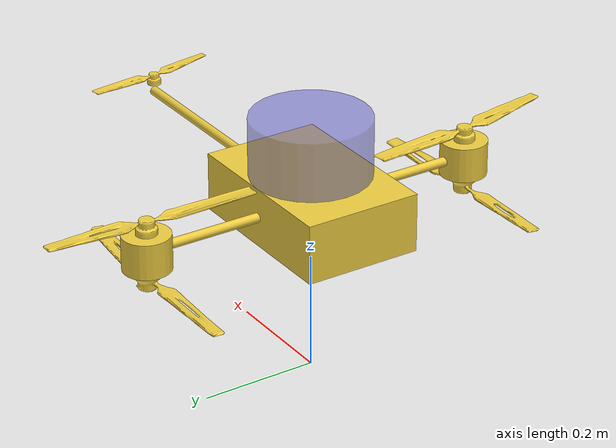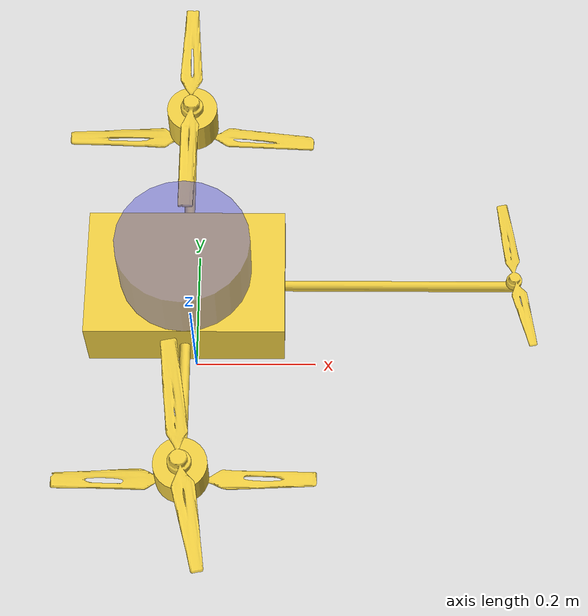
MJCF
<mujoco model="hnuter">
  <!-- 编译器设置：自动计算质量分布限制，使用弧度制，资源目录 -->
    <compiler autolimits="true" angle="radian" assetdir="assets_hnu"/>

    <!-- 物理环境参数：时间步长、重力、空气密度、粘度 -->
    <option timestep="0.01" gravity="0 0 -9.81" density="1.204" viscosity="1.8e-5"/>

    <!-- 全局资源（材质、纹理、网格） -->
    <asset>
        <!-- 纹理：天空盒渐变效果 -->
        <texture type="skybox" builtin="gradient" width="512" height="512" rgb1="0.6 0.8 1" rgb2="0.2 0.3 0.6"/>

        <!-- 材质：定义视觉和碰撞的材质特性 -->
        <material name="visualGeo" rgba="0.93 0.8 0.25 1"/> <!-- 视觉材质：橙色 -->
        <material name="collisionGeo" rgba="0.3 0.3 0.8 0.5"/> <!-- 碰撞材质：蓝色半透明 -->

        <!-- 网格：只保留螺旋桨部分的网格，其他部分改用基本几何体 -->
        <mesh name="framerb" file="T-framerb.stl"/>
        <mesh name="framert" file="T-framert.stl"/>
        <mesh name="framelb" file="T-framelb.stl"/>
        <mesh name="framelt" file="T-framelt.stl"/>
        <mesh name="frametail" file="T-frametail.stl"/>
    </asset>

    <!-- 默认参数设定（按类别分组） -->
    <default>
        <!-- 无人机类别的默认参数 -->
        <default class="drone">
        <!-- 视觉几何体默认参数：不参与碰撞 -->
        <default class="visual">
            <geom group="2" contype="0" conaffinity="0" material="visualGeo"/>
        </default>
        <!-- 碰撞几何体默认参数：设置接触动力学 -->
        <default class="collision">
            <geom group="3" contype="1" conaffinity="1" material="collisionGeo"/>
        </default>
            <!-- 电机默认控制范围 -->
            <site group="3"/>
            <motor ctrlrange="0 130"/>
        </default>
    </default>

    <!-- 世界实体（地面、无人机、光源等） -->
    <worldbody>
        <!-- 无人机主机身 -->
        <body name="base_link" pos="0 0 0.3" childclass="drone">
        <!-- 质量特性：位置、质量、对角惯性矩 -->
        <inertial pos="0 0 0" mass="1.9" diaginertia="0.1 0.12 0.1"/>
        <!-- 自由关节：允许6自由度运动 -->
        <joint name="free_joint" type="free"/>
        <!-- 传感器站点：用于放置IMU -->
        <site name="imu" pos="0 0 0"/>

        <!-- 主机身几何体：改用方块表示视觉，保持碰撞盒 -->
        <geom class="visual" type="box" size="0.15 0.1 0.05"/>
        <geom class="collision" type="box" size="0.15 0.1 0.05"/>

            <body name="xifu" pos="0.0 0.0 0.06">
                <inertial pos="0 0 0" mass="0.02" diaginertia="0.01 0.02 0.01"/>
                <geom class="visual" type="cylinder" size="0.1 0.09" material="collisionGeo"/>
                <geom class="collision" type="cylinder" size="0.1 0.09"/>
            </body>

            <!-- 右侧倾转机构 -->
            <body name="right_tilt_assembly" pos="0.0 0.3 0.0">
                <inertial pos="0 0 0" mass="0.02" diaginertia="0.01 0.02 0.01"/>
                <!-- 倾转关节：绕Y轴旋转，设置范围及阻尼 -->
                <joint name="tilt_right_joint" type="hinge" axis="0 -1 0" range="-3 3" damping="0.5"/>
                <!-- 几何体：改用圆柱体表示视觉，保持碰撞圆柱 -->
                <geom class="visual" type="cylinder" size="0.04 0.03"/>
                <!-- 右下螺旋桨：保持网格表示 -->
                <body name="right_bottom_prop" pos="0.0 0.0 -0.05">
                    <inertial pos="0 0 0" mass="0.01" diaginertia="0.001 0.001 0.002"/>
                    <joint name="prop_rb_joint" type="hinge" axis="0 0 1" damping="0.01"/>
                    <geom class="visual" type="mesh" mesh="framerb"/>
                    <site name="motor_r_lower" pos="0.0 0.0 0.0" zaxis="0 0 1"/>
                </body>
                <!-- 右上螺旋桨：保持网格表示 -->
                <body name="right_top_prop" pos="0.0 0.0 0.05">
                    <inertial pos="0 0 0" mass="0.01" diaginertia="0.001 0.001 0.002"/>
                    <joint name="prop_rt_joint" type="hinge" axis="0 0 1" damping="0.01"/>
                    <geom class="visual" type="mesh" mesh="framert"/>
                    <site name="motor_r_upper" pos="0.0 0.0 0.0" zaxis="0 0 1"/>
                </body>
            </body>

            <!-- 左侧倾转机构（结构对称） -->
            <body name="left_tilt_assembly"  pos="0.0 -0.3 0.0">
                <inertial pos="0 0 0" mass="0.02" diaginertia="0.01 0.02 0.01"/>
                <joint name="tilt_left_joint" type="hinge" axis="0 1 0" range="-3 3" damping="0.5"/>
                <!-- 几何体：改用圆柱体表示视觉 -->
                <geom class="visual" type="cylinder" size="0.04 0.03"/>
                <!-- 左下螺旋桨：保持网格表示 -->
                <body name="left_bottom_prop" pos="0.0 0.0 -0.05">
                    <inertial pos="0 0 0" mass="0.01" diaginertia="0.001 0.001 0.002"/>
                    <joint name="prop_lb_joint" type="hinge" axis="0 0 1" damping="0.01"/>
                    <geom class="visual" type="mesh" mesh="framelb"/>
                    <site name="motor_l_lower" pos="0.0 0.0 0.0" zaxis="0 0 1"/>
                </body>
                <!-- 左上螺旋桨：保持网格表示 -->
                <body name="left_top_prop" pos="0.0 0.0 0.05">
                    <inertial pos="0 0 0" mass="0.01" diaginertia="0.001 0.001 0.002"/>
                    <joint name="prop_lt_joint" type="hinge" axis="0 0 1" damping="0.01"/>
                    <geom class="visual" type="mesh" mesh="framelt"/>
                    <site name="motor_l_upper" pos="0.0 0.0 0.0" zaxis="0 0 1"/>
                </body>
            </body>

            <!-- 尾部推进器：改用圆柱体表示 -->
            <body name="tail_motor" pos="0.5 0.0 0.03">
                <inertial pos="0.0 0.0 0.0" mass="0.01" diaginertia="0.01 0.01 0.002"/>
                <joint name="tail_joint" type="hinge" axis="0 0 1" damping="0.01"/>
                <geom class="visual" type="mesh" mesh="frametail"/>
                <site name="motor_rear_upper" pos="0.0 0.0 0.0" zaxis="0 0 1"/>
            </body>

            <body name="rear_arm_base" pos="0.1 0 0">
                <geom class="visual" type="cylinder" fromto="0 0 0 0.4 0 0" size="0.008"/>
                <inertial pos="-0.2 0 0" mass="0.1" diaginertia="0.002 0.002 0.002"/>
            </body>

            <body name="left_arm_base" pos="0 0.1 0">
                <geom class="visual" type="cylinder" fromto="0 0 0 0 0.2 0" size="0.008"/>
                <inertial pos="0 0.1 0" mass="0.19" diaginertia="0.002 0.002 0.002"/>
            </body>

            <body name="right_arm_base" pos="0 -0.1 0">
                <geom class="visual" type="cylinder" fromto="0 0 0 0 -0.2 0" size="0.008"/>
                <inertial pos="0 -0.1 0" mass="0.19" diaginertia="0.002 0.002 0.002"/>
            </body>

        </body>
    </worldbody>

    <!-- 执行器系统（保持不变） -->
    <actuator>
        <position name="tilt_right" joint="tilt_right_joint" kp="15" kv="3" ctrlrange="-3 3"/>
        <position name="tilt_left"  joint="tilt_left_joint"  kp="15" kv="3" ctrlrange="-3 3"/>
        <motor class="drone" name="motor_r_lower" site="motor_r_lower" gear="0 0 1 0 0 0.006"  forcerange="0 15" ctrlrange="0 15"/>
        <motor class="drone" name="motor_r_upper" site="motor_r_upper" gear="0 0 1 0 0 -0.006" forcerange="0 15" ctrlrange="0 15"/>
        <motor class="drone" name="motor_l_lower" site="motor_l_lower" gear="0 0 1 0 0 -0.006" forcerange="0 15" ctrlrange="0 15"/>
        <motor class="drone" name="motor_l_upper" site="motor_l_upper" gear="0 0 1 0 0 0.006"  forcerange="0 15" ctrlrange="0 15"/>
        <motor class="drone" name="motor_rear_upper" site="motor_rear_upper" gear="0 0 1 0 0 0.08" forcerange="-5 5" ctrlrange="-5 5"/>
    </actuator>

    <!-- 传感器系统（保持不变） -->
    <sensor>
        <gyro name="body_gyro" site="imu"/>
        <accelerometer name="body_acc" site="imu"/>
        <framequat name="body_quat" objtype="site" objname="imu"/>
        <framepos name="body_pos" objtype="site" objname="imu"/>
        <framelinvel name="body_vel" objtype="site" objname="imu"/>
        <force name="thrust_rb_frc" site="motor_r_lower"/>
        <force name="thrust_rt_frc" site="motor_r_upper"/>
        <force name="thrust_lb_frc" site="motor_l_lower"/>
        <force name="thrust_lt_frc" site="motor_l_upper"/>
        <force name="thrust_tail_frc" site="motor_rear_upper"/>
        <subtreeangmom name="body_ang_mom" body="base_link"/>
        <jointpos name="tilt_right_pos" joint="tilt_right_joint"/>
        <jointvel name="tilt_right_vel" joint="tilt_right_joint"/>
        <jointpos name="tilt_left_pos" joint="tilt_left_joint"/>
        <jointvel name="tilt_left_vel" joint="tilt_left_joint"/>
    </sensor>
</mujoco>
